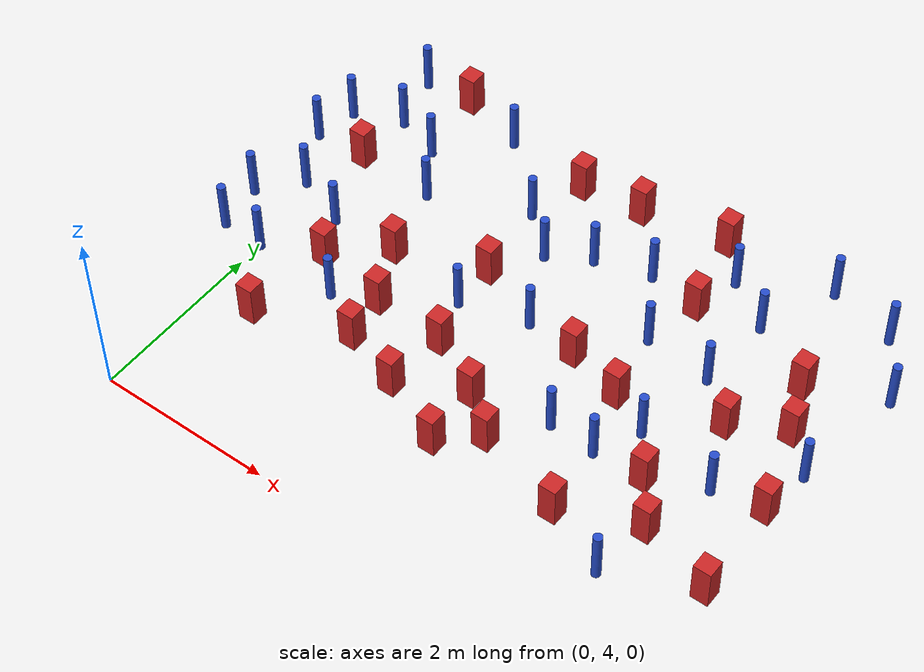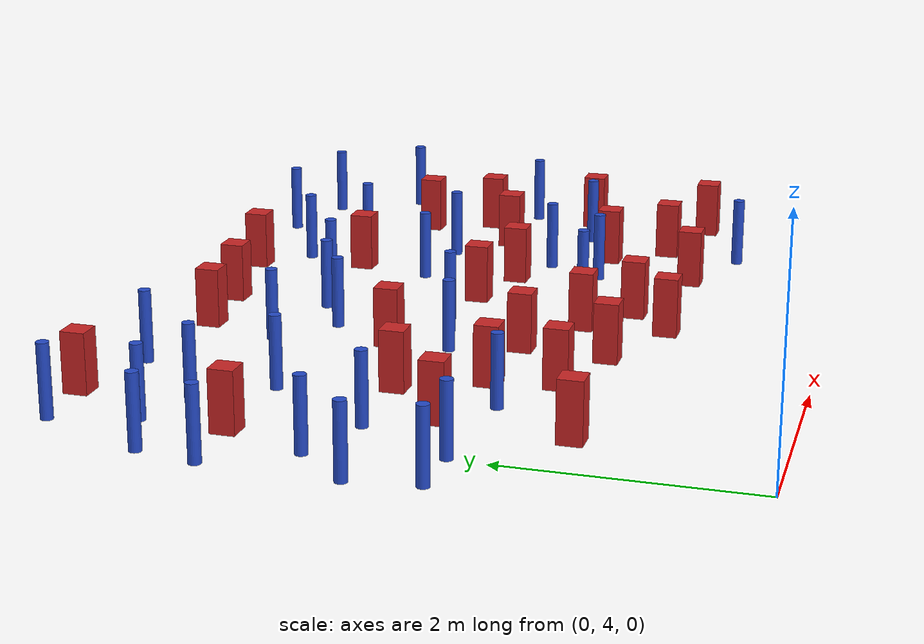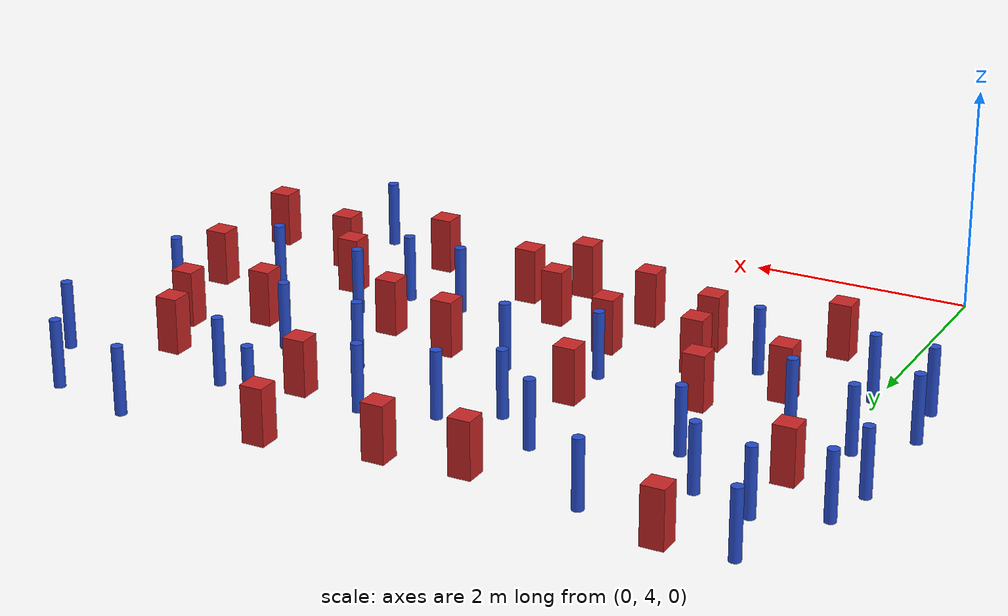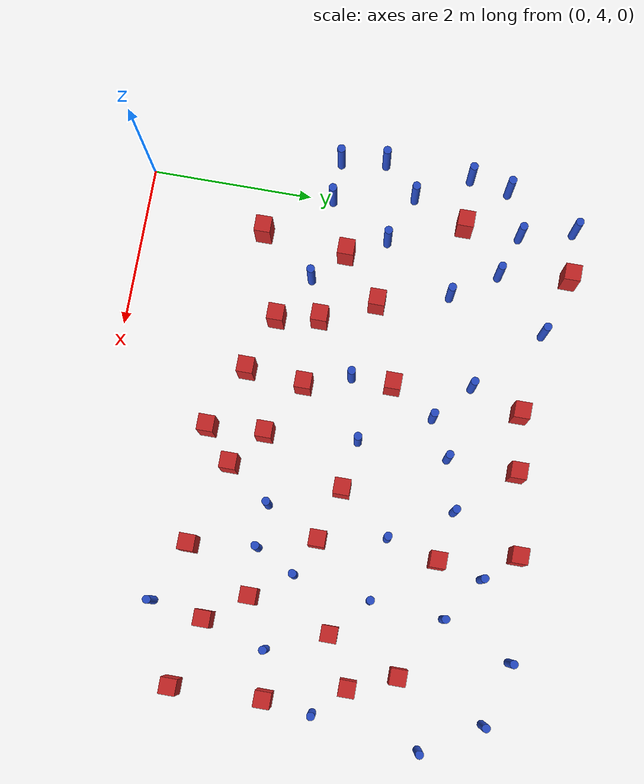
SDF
<sdf version="1.6">
 <model name="dense_7">
  <model name="pole_obstacle2">
   <static>true</static>
   <pose>1.06586460328 6.21019038955 7.38925637345e-09 -8.47170692799e-08 1.24976765033e-08 -1.74513093018e-07</pose>
   <link name="link">
    <pose>0 0 0.3 0 -0 0</pose>
    <inertial>
     <mass>1</mass>
     <inertia><ixx>0.145833</ixx><ixy>0</ixy><ixz>0</ixz><iyy>0.145833</iyy><iyz>0</iyz><izz>0.125</izz></inertia>
    </inertial>
    <collision name="collision">
     <geometry><cylinder><radius>0.05</radius><length>.6</length></cylinder></geometry>
    </collision>
    <visual name="visual">
     <geometry><cylinder><radius>0.05</radius><length>.6</length></cylinder></geometry>
     <material>
      <script><name>Gazebo/Blue</name><uri>file://media/materials/scripts/gazebo.material</uri></script>
     </material>
    </visual>
   </link>
  </model>
  <model name="pole_obstacle4">
   <static>true</static>
   <pose>4.92123123528 8.50646992746 7.38925637345e-09 -8.471706928e-08 1.24976765081e-08 -1.74513093015e-07</pose>
   <link name="link">
    <pose>0 0 0.3 0 -0 0</pose>
    <inertial>
     <mass>1</mass>
     <inertia><ixx>0.145833</ixx><ixy>0</ixy><ixz>0</ixz><iyy>0.145833</iyy><iyz>0</iyz><izz>0.125</izz></inertia>
    </inertial>
    <collision name="collision">
     <geometry><cylinder><radius>0.05</radius><length>.6</length></cylinder></geometry>
    </collision>
    <visual name="visual">
     <geometry><cylinder><radius>0.05</radius><length>.6</length></cylinder></geometry>
     <material>
      <script><name>Gazebo/Blue</name><uri>file://media/materials/scripts/gazebo.material</uri></script>
     </material>
    </visual>
   </link>
  </model>
  <model name="pole_obstacle9">
   <static>true</static>
   <pose>2.97873358199 7.12761243668 7.38925637345e-09 -8.47170692798e-08 1.24976765033e-08 -1.74513093019e-07</pose>
   <link name="link">
    <pose>0 0 0.3 0 -0 0</pose>
    <inertial>
     <mass>1</mass>
     <inertia><ixx>0.145833</ixx><ixy>0</ixy><ixz>0</ixz><iyy>0.145833</iyy><iyz>0</iyz><izz>0.125</izz></inertia>
    </inertial>
    <collision name="collision">
     <geometry><cylinder><radius>0.05</radius><length>.6</length></cylinder></geometry>
    </collision>
    <visual name="visual">
     <geometry><cylinder><radius>0.05</radius><length>.6</length></cylinder></geometry>
     <material>
      <script><name>Gazebo/Blue</name><uri>file://media/materials/scripts/gazebo.material</uri></script>
     </material>
    </visual>
   </link>
  </model>
  <model name="pole_obstacle15">
   <static>true</static>
   <pose>5.2954482456 9.36882287065 7.38925637345e-09 -8.471706928e-08 1.24976765081e-08 -1.74513093015e-07</pose>
   <link name="link">
    <pose>0 0 0.3 0 -0 0</pose>
    <inertial>
     <mass>1</mass>
     <inertia><ixx>0.145833</ixx><ixy>0</ixy><ixz>0</ixz><iyy>0.145833</iyy><iyz>0</iyz><izz>0.125</izz></inertia>
    </inertial>
    <collision name="collision">
     <geometry><cylinder><radius>0.05</radius><length>.6</length></cylinder></geometry>
    </collision>
    <visual name="visual">
     <geometry><cylinder><radius>0.05</radius><length>.6</length></cylinder></geometry>
     <material>
      <script><name>Gazebo/Blue</name><uri>file://media/materials/scripts/gazebo.material</uri></script>
     </material>
    </visual>
   </link>
  </model>
  <model name="square_post_obstacle26">
   <static>true</static>
   <pose>3.03407934263 9.09152359974 1.91545236811e-07 -7.35059704564e-06 1.12565212e-07 2.39332434364e-05</pose>
   <link name="link">
    <pose>0 0 0.25 0 -0 0</pose>
    <inertial>
     <mass>100</mass>
     <inertia>
      <ixx>0.166667</ixx>
      <ixy>0</ixy>
      <ixz>0</ixz>
      <iyy>0.166667</iyy>
      <iyz>0</iyz>
      <izz>0.166667</izz>
     </inertia>
    </inertial>
    <collision name="collision"><geometry><box><size>.2 .2 .5</size></box></geometry></collision>
    <visual name="visual">
     <geometry><box><size>.2 .2 .5</size></box></geometry>
     <material>
      <script><name>Gazebo/Red</name><uri>file://media/materials/scripts/gazebo.material</uri></script>
     </material>
    </visual>
   </link>
  </model>
  <model name="square_post_obstacle27">
   <static>true</static>
   <pose>3.11925551717 5.30204292351 1.91545236811e-07 -7.35059704564e-06 1.12565212e-07 2.39332434364e-05</pose>
   <link name="link">
    <pose>0 0 0.25 0 -0 0</pose>
    <inertial>
     <mass>100</mass>
     <inertia>
      <ixx>0.166667</ixx>
      <ixy>0</ixy>
      <ixz>0</ixz>
      <iyy>0.166667</iyy>
      <iyz>0</iyz>
      <izz>0.166667</izz>
     </inertia>
    </inertial>
    <collision name="collision"><geometry><box><size>.2 .2 .5</size></box></geometry></collision>
    <visual name="visual">
     <geometry><box><size>.2 .2 .5</size></box></geometry>
     <material>
      <script><name>Gazebo/Red</name><uri>file://media/materials/scripts/gazebo.material</uri></script>
     </material>
    </visual>
   </link>
  </model>
  <model name="pole_obstacle18">
   <static>true</static>
   <pose>0.428044369106 7.05701752918 7.38925637345e-09 -8.471706928e-08 1.24976765079e-08 -1.74513093015e-07</pose>
   <link name="link">
    <pose>0 0 0.3 0 -0 0</pose>
    <inertial>
     <mass>1</mass>
     <inertia><ixx>0.145833</ixx><ixy>0</ixy><ixz>0</ixz><iyy>0.145833</iyy><iyz>0</iyz><izz>0.125</izz></inertia>
    </inertial>
    <collision name="collision">
     <geometry><cylinder><radius>0.05</radius><length>.6</length></cylinder></geometry>
    </collision>
    <visual name="visual">
     <geometry><cylinder><radius>0.05</radius><length>.6</length></cylinder></geometry>
     <material>
      <script><name>Gazebo/Blue</name><uri>file://media/materials/scripts/gazebo.material</uri></script>
     </material>
    </visual>
   </link>
  </model>
  <model name="pole_obstacle20">
   <static>true</static>
   <pose>-0.183347849124 7.29966373755 7.38925637345e-09 -8.47170692799e-08 1.24976765068e-08 -1.74513093018e-07</pose>
   <link name="link">
    <pose>0 0 0.3 0 -0 0</pose>
    <inertial>
     <mass>1</mass>
     <inertia><ixx>0.145833</ixx><ixy>0</ixy><ixz>0</ixz><iyy>0.145833</iyy><iyz>0</iyz><izz>0.125</izz></inertia>
    </inertial>
    <collision name="collision">
     <geometry><cylinder><radius>0.05</radius><length>.6</length></cylinder></geometry>
    </collision>
    <visual name="visual">
     <geometry><cylinder><radius>0.05</radius><length>.6</length></cylinder></geometry>
     <material>
      <script><name>Gazebo/Blue</name><uri>file://media/materials/scripts/gazebo.material</uri></script>
     </material>
    </visual>
   </link>
  </model>
  <model name="square_post_obstacle31">
   <static>true</static>
   <pose>5.40658277878 5.69323114022 1.91545236811e-07 -7.35059704564e-06 1.12565212e-07 2.39332434364e-05</pose>
   <link name="link">
    <pose>0 0 0.25 0 -0 0</pose>
    <inertial>
     <mass>100</mass>
     <inertia>
      <ixx>0.166667</ixx>
      <ixy>0</ixy>
      <ixz>0</ixz>
      <iyy>0.166667</iyy>
      <iyz>0</iyz>
      <izz>0.166667</izz>
     </inertia>
    </inertial>
    <collision name="collision"><geometry><box><size>.2 .2 .5</size></box></geometry></collision>
    <visual name="visual">
     <geometry><box><size>.2 .2 .5</size></box></geometry>
     <material>
      <script><name>Gazebo/Red</name><uri>file://media/materials/scripts/gazebo.material</uri></script>
     </material>
    </visual>
   </link>
  </model>
  <model name="square_post_obstacle34">
   <static>true</static>
   <pose>1.2423792632 7.06311561988 1.91545236811e-07 -7.35059704564e-06 1.12565212e-07 2.39332434364e-05</pose>
   <link name="link">
    <pose>0 0 0.25 0 -0 0</pose>
    <inertial>
     <mass>100</mass>
     <inertia>
      <ixx>0.166667</ixx>
      <ixy>0</ixy>
      <ixz>0</ixz>
      <iyy>0.166667</iyy>
      <iyz>0</iyz>
      <izz>0.166667</izz>
     </inertia>
    </inertial>
    <collision name="collision"><geometry><box><size>.2 .2 .5</size></box></geometry></collision>
    <visual name="visual">
     <geometry><box><size>.2 .2 .5</size></box></geometry>
     <material>
      <script><name>Gazebo/Red</name><uri>file://media/materials/scripts/gazebo.material</uri></script>
     </material>
    </visual>
   </link>
  </model>
  <model name="pole_obstacle37">
   <static>true</static>
   <pose>4.85726156089 7.60585844058 7.38925637345e-09 -8.47170692796e-08 1.24976764786e-08 -1.74513093032e-07</pose>
   <link name="link">
    <pose>0 0 0.3 0 -0 0</pose>
    <inertial>
     <mass>1</mass>
     <inertia><ixx>0.145833</ixx><ixy>0</ixy><ixz>0</ixz><iyy>0.145833</iyy><iyz>0</iyz><izz>0.125</izz></inertia>
    </inertial>
    <collision name="collision">
     <geometry><cylinder><radius>0.05</radius><length>.6</length></cylinder></geometry>
    </collision>
    <visual name="visual">
     <geometry><cylinder><radius>0.05</radius><length>.6</length></cylinder></geometry>
     <material>
      <script><name>Gazebo/Blue</name><uri>file://media/materials/scripts/gazebo.material</uri></script>
     </material>
    </visual>
   </link>
  </model>
  <model name="pole_obstacle39">
   <static>true</static>
   <pose>0.626349549061 8.48914314361 7.38925637345e-09 -8.47170692797e-08 1.249767648e-08 -1.74513093032e-07</pose>
   <link name="link">
    <pose>0 0 0.3 0 -0 0</pose>
    <inertial>
     <mass>1</mass>
     <inertia><ixx>0.145833</ixx><ixy>0</ixy><ixz>0</ixz><iyy>0.145833</iyy><iyz>0</iyz><izz>0.125</izz></inertia>
    </inertial>
    <collision name="collision">
     <geometry><cylinder><radius>0.05</radius><length>.6</length></cylinder></geometry>
    </collision>
    <visual name="visual">
     <geometry><cylinder><radius>0.05</radius><length>.6</length></cylinder></geometry>
     <material>
      <script><name>Gazebo/Blue</name><uri>file://media/materials/scripts/gazebo.material</uri></script>
     </material>
    </visual>
   </link>
  </model>
  <model name="pole_obstacle42">
   <static>true</static>
   <pose>3.00503990446 8.23887131687 7.38925637345e-09 -8.47170692793e-08 1.24976764408e-08 -1.74513093041e-07</pose>
   <link name="link">
    <pose>0 0 0.3 0 -0 0</pose>
    <inertial>
     <mass>1</mass>
     <inertia><ixx>0.145833</ixx><ixy>0</ixy><ixz>0</ixz><iyy>0.145833</iyy><iyz>0</iyz><izz>0.125</izz></inertia>
    </inertial>
    <collision name="collision">
     <geometry><cylinder><radius>0.05</radius><length>.6</length></cylinder></geometry>
    </collision>
    <visual name="visual">
     <geometry><cylinder><radius>0.05</radius><length>.6</length></cylinder></geometry>
     <material>
      <script><name>Gazebo/Blue</name><uri>file://media/materials/scripts/gazebo.material</uri></script>
     </material>
    </visual>
   </link>
  </model>
  <model name="pole_obstacle45">
   <static>true</static>
   <pose>4.08362667837 7.68163873708 7.38925637345e-09 -8.47170692796e-08 1.24976764786e-08 -1.74513093032e-07</pose>
   <link name="link">
    <pose>0 0 0.3 0 -0 0</pose>
    <inertial>
     <mass>1</mass>
     <inertia><ixx>0.145833</ixx><ixy>0</ixy><ixz>0</ixz><iyy>0.145833</iyy><iyz>0</iyz><izz>0.125</izz></inertia>
    </inertial>
    <collision name="collision">
     <geometry><cylinder><radius>0.05</radius><length>.6</length></cylinder></geometry>
    </collision>
    <visual name="visual">
     <geometry><cylinder><radius>0.05</radius><length>.6</length></cylinder></geometry>
     <material>
      <script><name>Gazebo/Blue</name><uri>file://media/materials/scripts/gazebo.material</uri></script>
     </material>
    </visual>
   </link>
  </model>
  <model name="pole_obstacle46">
   <static>true</static>
   <pose>0.991937153047 7.93670062329 7.38925637345e-09 -8.471706928e-08 1.24976765144e-08 -1.74513093012e-07</pose>
   <link name="link">
    <pose>0 0 0.3 0 -0 0</pose>
    <inertial>
     <mass>1</mass>
     <inertia><ixx>0.145833</ixx><ixy>0</ixy><ixz>0</ixz><iyy>0.145833</iyy><iyz>0</iyz><izz>0.125</izz></inertia>
    </inertial>
    <collision name="collision">
     <geometry><cylinder><radius>0.05</radius><length>.6</length></cylinder></geometry>
    </collision>
    <visual name="visual">
     <geometry><cylinder><radius>0.05</radius><length>.6</length></cylinder></geometry>
     <material>
      <script><name>Gazebo/Blue</name><uri>file://media/materials/scripts/gazebo.material</uri></script>
     </material>
    </visual>
   </link>
  </model>
  <model name="square_post_obstacle49">
   <static>true</static>
   <pose>2.4050298605 6.35766472136 1.91545236811e-07 -7.35059704564e-06 1.12565212e-07 2.39332434364e-05</pose>
   <link name="link">
    <pose>0 0 0.25 0 -0 0</pose>
    <inertial>
     <mass>100</mass>
     <inertia>
      <ixx>0.166667</ixx>
      <ixy>0</ixy>
      <ixz>0</ixz>
      <iyy>0.166667</iyy>
      <iyz>0</iyz>
      <izz>0.166667</izz>
     </inertia>
    </inertial>
    <collision name="collision"><geometry><box><size>.2 .2 .5</size></box></geometry></collision>
    <visual name="visual">
     <geometry><box><size>.2 .2 .5</size></box></geometry>
     <material>
      <script><name>Gazebo/Red</name><uri>file://media/materials/scripts/gazebo.material</uri></script>
     </material>
    </visual>
   </link>
  </model>
  <model name="pole_obstacle52">
   <static>true</static>
   <pose>2.08269005218 8.38852144401 7.38925637345e-09 -8.47170692793e-08 1.24976764408e-08 -1.74513093041e-07</pose>
   <link name="link">
    <pose>0 0 0.3 0 -0 0</pose>
    <inertial>
     <mass>1</mass>
     <inertia><ixx>0.145833</ixx><ixy>0</ixy><ixz>0</ixz><iyy>0.145833</iyy><iyz>0</iyz><izz>0.125</izz></inertia>
    </inertial>
    <collision name="collision">
     <geometry><cylinder><radius>0.05</radius><length>.6</length></cylinder></geometry>
    </collision>
    <visual name="visual">
     <geometry><cylinder><radius>0.05</radius><length>.6</length></cylinder></geometry>
     <material>
      <script><name>Gazebo/Blue</name><uri>file://media/materials/scripts/gazebo.material</uri></script>
     </material>
    </visual>
   </link>
  </model>
  <model name="pole_obstacle53">
   <static>true</static>
   <pose>6.285139771 7.15417417461 7.38925637345e-09 -8.47170692796e-08 1.24976764786e-08 -1.74513093032e-07</pose>
   <link name="link">
    <pose>0 0 0.3 0 -0 0</pose>
    <inertial>
     <mass>1</mass>
     <inertia><ixx>0.145833</ixx><ixy>0</ixy><ixz>0</ixz><iyy>0.145833</iyy><iyz>0</iyz><izz>0.125</izz></inertia>
    </inertial>
    <collision name="collision">
     <geometry><cylinder><radius>0.05</radius><length>.6</length></cylinder></geometry>
    </collision>
    <visual name="visual">
     <geometry><cylinder><radius>0.05</radius><length>.6</length></cylinder></geometry>
     <material>
      <script><name>Gazebo/Blue</name><uri>file://media/materials/scripts/gazebo.material</uri></script>
     </material>
    </visual>
   </link>
  </model>
  <model name="pole_obstacle54">
   <static>true</static>
   <pose>3.63076233303 8.42207366704 7.38925637345e-09 -8.47170692793e-08 1.24976764408e-08 -1.74513093041e-07</pose>
   <link name="link">
    <pose>0 0 0.3 0 -0 0</pose>
    <inertial>
     <mass>1</mass>
     <inertia><ixx>0.145833</ixx><ixy>0</ixy><ixz>0</ixz><iyy>0.145833</iyy><iyz>0</iyz><izz>0.125</izz></inertia>
    </inertial>
    <collision name="collision">
     <geometry><cylinder><radius>0.05</radius><length>.6</length></cylinder></geometry>
    </collision>
    <visual name="visual">
     <geometry><cylinder><radius>0.05</radius><length>.6</length></cylinder></geometry>
     <material>
      <script><name>Gazebo/Blue</name><uri>file://media/materials/scripts/gazebo.material</uri></script>
     </material>
    </visual>
   </link>
  </model>
  <model name="square_post_obstacle75">
   <static>true</static>
   <pose>5.67974589272 8.07805572029 1.91545236811e-07 -7.35059704564e-06 1.12565212e-07 2.39332434364e-05</pose>
   <link name="link">
    <pose>0 0 0.25 0 -0 0</pose>
    <inertial>
     <mass>100</mass>
     <inertia>
      <ixx>0.166667</ixx>
      <ixy>0</ixy>
      <ixz>0</ixz>
      <iyy>0.166667</iyy>
      <iyz>0</iyz>
      <izz>0.166667</izz>
     </inertia>
    </inertial>
    <collision name="collision"><geometry><box><size>.2 .2 .5</size></box></geometry></collision>
    <visual name="visual">
     <geometry><box><size>.2 .2 .5</size></box></geometry>
     <material>
      <script><name>Gazebo/Red</name><uri>file://media/materials/scripts/gazebo.material</uri></script>
     </material>
    </visual>
   </link>
  </model>
  <model name="pole_obstacle70">
   <static>true</static>
   <pose>6.0670929877 9.16637028866 7.38925637345e-09 -8.471706928e-08 1.24976765081e-08 -1.74513093015e-07</pose>
   <link name="link">
    <pose>0 0 0.3 0 -0 0</pose>
    <inertial>
     <mass>1</mass>
     <inertia><ixx>0.145833</ixx><ixy>0</ixy><ixz>0</ixz><iyy>0.145833</iyy><iyz>0</iyz><izz>0.125</izz></inertia>
    </inertial>
    <collision name="collision">
     <geometry><cylinder><radius>0.05</radius><length>.6</length></cylinder></geometry>
    </collision>
    <visual name="visual">
     <geometry><cylinder><radius>0.05</radius><length>.6</length></cylinder></geometry>
     <material>
      <script><name>Gazebo/Blue</name><uri>file://media/materials/scripts/gazebo.material</uri></script>
     </material>
    </visual>
   </link>
  </model>
  <model name="pole_obstacle71">
   <static>true</static>
   <pose>-0.488612107493 6.31344434281 7.38925637345e-09 -8.471706928e-08 1.24976765062e-08 -1.74513093016e-07</pose>
   <link name="link">
    <pose>0 0 0.3 0 -0 0</pose>
    <inertial>
     <mass>1</mass>
     <inertia><ixx>0.145833</ixx><ixy>0</ixy><ixz>0</ixz><iyy>0.145833</iyy><iyz>0</iyz><izz>0.125</izz></inertia>
    </inertial>
    <collision name="collision">
     <geometry><cylinder><radius>0.05</radius><length>.6</length></cylinder></geometry>
    </collision>
    <visual name="visual">
     <geometry><cylinder><radius>0.05</radius><length>.6</length></cylinder></geometry>
     <material>
      <script><name>Gazebo/Blue</name><uri>file://media/materials/scripts/gazebo.material</uri></script>
     </material>
    </visual>
   </link>
  </model>
  <model name="square_post_obstacle80">
   <static>true</static>
   <pose>0.0815733638794 7.97062195004 1.91545236811e-07 -7.35059704564e-06 1.12565212e-07 2.39332434364e-05</pose>
   <link name="link">
    <pose>0 0 0.25 0 -0 0</pose>
    <inertial>
     <mass>100</mass>
     <inertia>
      <ixx>0.166667</ixx>
      <ixy>0</ixy>
      <ixz>0</ixz>
      <iyy>0.166667</iyy>
      <iyz>0</iyz>
      <izz>0.166667</izz>
     </inertia>
    </inertial>
    <collision name="collision"><geometry><box><size>.2 .2 .5</size></box></geometry></collision>
    <visual name="visual">
     <geometry><box><size>.2 .2 .5</size></box></geometry>
     <material>
      <script><name>Gazebo/Red</name><uri>file://media/materials/scripts/gazebo.material</uri></script>
     </material>
    </visual>
   </link>
  </model>
  <model name="pole_obstacle93">
   <static>true</static>
   <pose>0.0936364248604 8.6671400511 7.38925637345e-09 -8.47170692797e-08 1.24976764742e-08 -1.74513093035e-07</pose>
   <link name="link">
    <pose>0 0 0.3 0 -0 0</pose>
    <inertial>
     <mass>1</mass>
     <inertia><ixx>0.145833</ixx><ixy>0</ixy><ixz>0</ixz><iyy>0.145833</iyy><iyz>0</iyz><izz>0.125</izz></inertia>
    </inertial>
    <collision name="collision">
     <geometry><cylinder><radius>0.05</radius><length>.6</length></cylinder></geometry>
    </collision>
    <visual name="visual">
     <geometry><cylinder><radius>0.05</radius><length>.6</length></cylinder></geometry>
     <material>
      <script><name>Gazebo/Blue</name><uri>file://media/materials/scripts/gazebo.material</uri></script>
     </material>
    </visual>
   </link>
  </model>
  <model name="square_post_obstacle85">
   <static>true</static>
   <pose>0.525322281253 9.35652579422 1.91545236811e-07 -7.35059704564e-06 1.12565212e-07 2.39332434364e-05</pose>
   <link name="link">
    <pose>0 0 0.25 0 -0 0</pose>
    <inertial>
     <mass>100</mass>
     <inertia>
      <ixx>0.166667</ixx>
      <ixy>0</ixy>
      <ixz>0</ixz>
      <iyy>0.166667</iyy>
      <iyz>0</iyz>
      <izz>0.166667</izz>
     </inertia>
    </inertial>
    <collision name="collision"><geometry><box><size>.2 .2 .5</size></box></geometry></collision>
    <visual name="visual">
     <geometry><box><size>.2 .2 .5</size></box></geometry>
     <material>
      <script><name>Gazebo/Red</name><uri>file://media/materials/scripts/gazebo.material</uri></script>
     </material>
    </visual>
   </link>
  </model>
  <model name="pole_obstacle100">
   <static>true</static>
   <pose>5.29961428321 5.03121042842 7.38925637345e-09 -8.47170692796e-08 1.24976764786e-08 -1.74513093032e-07</pose>
   <link name="link">
    <pose>0 0 0.3 0 -0 0</pose>
    <inertial>
     <mass>1</mass>
     <inertia><ixx>0.145833</ixx><ixy>0</ixy><ixz>0</ixz><iyy>0.145833</iyy><iyz>0</iyz><izz>0.125</izz></inertia>
    </inertial>
    <collision name="collision">
     <geometry><cylinder><radius>0.05</radius><length>.6</length></cylinder></geometry>
    </collision>
    <visual name="visual">
     <geometry><cylinder><radius>0.05</radius><length>.6</length></cylinder></geometry>
     <material>
      <script><name>Gazebo/Blue</name><uri>file://media/materials/scripts/gazebo.material</uri></script>
     </material>
    </visual>
   </link>
  </model>
  <model name="square_post_obstacle93">
   <static>true</static>
   <pose>0.685206457645 6.5806761915 1.91545236811e-07 -7.35059704564e-06 1.12565212e-07 2.39332434364e-05</pose>
   <link name="link">
    <pose>0 0 0.25 0 -0 0</pose>
    <inertial>
     <mass>100</mass>
     <inertia>
      <ixx>0.166667</ixx>
      <ixy>0</ixy>
      <ixz>0</ixz>
      <iyy>0.166667</iyy>
      <iyz>0</iyz>
      <izz>0.166667</izz>
     </inertia>
    </inertial>
    <collision name="collision"><geometry><box><size>.2 .2 .5</size></box></geometry></collision>
    <visual name="visual">
     <geometry><box><size>.2 .2 .5</size></box></geometry>
     <material>
      <script><name>Gazebo/Red</name><uri>file://media/materials/scripts/gazebo.material</uri></script>
     </material>
    </visual>
   </link>
  </model>
  <model name="square_post_obstacle97">
   <static>true</static>
   <pose>5.91391910989 7.5128489551 1.91545236811e-07 -7.35059704564e-06 1.12565212e-07 2.39332434364e-05</pose>
   <link name="link">
    <pose>0 0 0.25 0 -0 0</pose>
    <inertial>
     <mass>100</mass>
     <inertia>
      <ixx>0.166667</ixx>
      <ixy>0</ixy>
      <ixz>0</ixz>
      <iyy>0.166667</iyy>
      <iyz>0</iyz>
      <izz>0.166667</izz>
     </inertia>
    </inertial>
    <collision name="collision"><geometry><box><size>.2 .2 .5</size></box></geometry></collision>
    <visual name="visual">
     <geometry><box><size>.2 .2 .5</size></box></geometry>
     <material>
      <script><name>Gazebo/Red</name><uri>file://media/materials/scripts/gazebo.material</uri></script>
     </material>
    </visual>
   </link>
  </model>
  <model name="square_post_obstacle110">
   <static>true</static>
   <pose>6.2070752471 6.56133386793 1.91545236811e-07 -7.35059704564e-06 1.12565212e-07 2.39332434364e-05</pose>
   <link name="link">
    <pose>0 0 0.25 0 -0 0</pose>
    <inertial>
     <mass>100</mass>
     <inertia>
      <ixx>0.166667</ixx>
      <ixy>0</ixy>
      <ixz>0</ixz>
      <iyy>0.166667</iyy>
      <iyz>0</iyz>
      <izz>0.166667</izz>
     </inertia>
    </inertial>
    <collision name="collision"><geometry><box><size>.2 .2 .5</size></box></geometry></collision>
    <visual name="visual">
     <geometry><box><size>.2 .2 .5</size></box></geometry>
     <material>
      <script><name>Gazebo/Red</name><uri>file://media/materials/scripts/gazebo.material</uri></script>
     </material>
    </visual>
   </link>
  </model>
  <model name="square_post_obstacle114">
   <static>true</static>
   <pose>5.04928227468 6.1761450967 1.91545236811e-07 -7.35059704564e-06 1.12565212e-07 2.39332434364e-05</pose>
   <link name="link">
    <pose>0 0 0.25 0 -0 0</pose>
    <inertial>
     <mass>100</mass>
     <inertia>
      <ixx>0.166667</ixx>
      <ixy>0</ixy>
      <ixz>0</ixz>
      <iyy>0.166667</iyy>
      <iyz>0</iyz>
      <izz>0.166667</izz>
     </inertia>
    </inertial>
    <collision name="collision"><geometry><box><size>.2 .2 .5</size></box></geometry></collision>
    <visual name="visual">
     <geometry><box><size>.2 .2 .5</size></box></geometry>
     <material>
      <script><name>Gazebo/Red</name><uri>file://media/materials/scripts/gazebo.material</uri></script>
     </material>
    </visual>
   </link>
  </model>
  <model name="pole_obstacle132">
   <static>true</static>
   <pose>2.5421407417 7.97824844652 7.38925637345e-09 -8.47170692799e-08 1.24976765031e-08 -1.7451309302e-07</pose>
   <link name="link">
    <pose>0 0 0.3 0 -0 0</pose>
    <inertial>
     <mass>1</mass>
     <inertia><ixx>0.145833</ixx><ixy>0</ixy><ixz>0</ixz><iyy>0.145833</iyy><iyz>0</iyz><izz>0.125</izz></inertia>
    </inertial>
    <collision name="collision">
     <geometry><cylinder><radius>0.05</radius><length>.6</length></cylinder></geometry>
    </collision>
    <visual name="visual">
     <geometry><cylinder><radius>0.05</radius><length>.6</length></cylinder></geometry>
     <material>
      <script><name>Gazebo/Blue</name><uri>file://media/materials/scripts/gazebo.material</uri></script>
     </material>
    </visual>
   </link>
  </model>
  <model name="square_post_obstacle117">
   <static>true</static>
   <pose>2.33819778625 5.6386660418 1.91545236811e-07 -7.35059704564e-06 1.12565212e-07 2.39332434364e-05</pose>
   <link name="link">
    <pose>0 0 0.25 0 -0 0</pose>
    <inertial>
     <mass>100</mass>
     <inertia>
      <ixx>0.166667</ixx>
      <ixy>0</ixy>
      <ixz>0</ixz>
      <iyy>0.166667</iyy>
      <iyz>0</iyz>
      <izz>0.166667</izz>
     </inertia>
    </inertial>
    <collision name="collision"><geometry><box><size>.2 .2 .5</size></box></geometry></collision>
    <visual name="visual">
     <geometry><box><size>.2 .2 .5</size></box></geometry>
     <material>
      <script><name>Gazebo/Red</name><uri>file://media/materials/scripts/gazebo.material</uri></script>
     </material>
    </visual>
   </link>
  </model>
  <model name="square_post_obstacle120">
   <static>true</static>
   <pose>6.24600844041 5.45172950169 1.91545236811e-07 -7.35059704564e-06 1.12565212e-07 2.39332434364e-05</pose>
   <link name="link">
    <pose>0 0 0.25 0 -0 0</pose>
    <inertial>
     <mass>100</mass>
     <inertia>
      <ixx>0.166667</ixx>
      <ixy>0</ixy>
      <ixz>0</ixz>
      <iyy>0.166667</iyy>
      <iyz>0</iyz>
      <izz>0.166667</izz>
     </inertia>
    </inertial>
    <collision name="collision"><geometry><box><size>.2 .2 .5</size></box></geometry></collision>
    <visual name="visual">
     <geometry><box><size>.2 .2 .5</size></box></geometry>
     <material>
      <script><name>Gazebo/Red</name><uri>file://media/materials/scripts/gazebo.material</uri></script>
     </material>
    </visual>
   </link>
  </model>
  <model name="square_post_obstacle123">
   <static>true</static>
   <pose>0.581401344451 5.52908161055 1.91545236811e-07 -7.35059704564e-06 1.12565212e-07 2.39332434364e-05</pose>
   <link name="link">
    <pose>0 0 0.25 0 -0 0</pose>
    <inertial>
     <mass>100</mass>
     <inertia>
      <ixx>0.166667</ixx>
      <ixy>0</ixy>
      <ixz>0</ixz>
      <iyy>0.166667</iyy>
      <iyz>0</iyz>
      <izz>0.166667</izz>
     </inertia>
    </inertial>
    <collision name="collision"><geometry><box><size>.2 .2 .5</size></box></geometry></collision>
    <visual name="visual">
     <geometry><box><size>.2 .2 .5</size></box></geometry>
     <material>
      <script><name>Gazebo/Red</name><uri>file://media/materials/scripts/gazebo.material</uri></script>
     </material>
    </visual>
   </link>
  </model>
  <model name="square_post_obstacle126">
   <static>true</static>
   <pose>2.30696308264 9.01777164207 1.91545236811e-07 -7.35059704564e-06 1.12565212e-07 2.39332434364e-05</pose>
   <link name="link">
    <pose>0 0 0.25 0 -0 0</pose>
    <inertial>
     <mass>100</mass>
     <inertia>
      <ixx>0.166667</ixx>
      <ixy>0</ixy>
      <ixz>0</ixz>
      <iyy>0.166667</iyy>
      <iyz>0</iyz>
      <izz>0.166667</izz>
     </inertia>
    </inertial>
    <collision name="collision"><geometry><box><size>.2 .2 .5</size></box></geometry></collision>
    <visual name="visual">
     <geometry><box><size>.2 .2 .5</size></box></geometry>
     <material>
      <script><name>Gazebo/Red</name><uri>file://media/materials/scripts/gazebo.material</uri></script>
     </material>
    </visual>
   </link>
  </model>
  <model name="square_post_obstacle129">
   <static>true</static>
   <pose>4.55897571774 5.34434781311 1.91545236811e-07 -7.35059704564e-06 1.12565212e-07 2.39332434364e-05</pose>
   <link name="link">
    <pose>0 0 0.25 0 -0 0</pose>
    <inertial>
     <mass>100</mass>
     <inertia>
      <ixx>0.166667</ixx>
      <ixy>0</ixy>
      <ixz>0</ixz>
      <iyy>0.166667</iyy>
      <iyz>0</iyz>
      <izz>0.166667</izz>
     </inertia>
    </inertial>
    <collision name="collision"><geometry><box><size>.2 .2 .5</size></box></geometry></collision>
    <visual name="visual">
     <geometry><box><size>.2 .2 .5</size></box></geometry>
     <material>
      <script><name>Gazebo/Red</name><uri>file://media/materials/scripts/gazebo.material</uri></script>
     </material>
    </visual>
   </link>
  </model>
  <model name="square_post_obstacle134">
   <static>true</static>
   <pose>4.24744561423 8.31666862912 1.91545236811e-07 -7.35059704564e-06 1.12565212e-07 2.39332434364e-05</pose>
   <link name="link">
    <pose>0 0 0.25 0 -0 0</pose>
    <inertial>
     <mass>100</mass>
     <inertia>
      <ixx>0.166667</ixx>
      <ixy>0</ixy>
      <ixz>0</ixz>
      <iyy>0.166667</iyy>
      <iyz>0</iyz>
      <izz>0.166667</izz>
     </inertia>
    </inertial>
    <collision name="collision"><geometry><box><size>.2 .2 .5</size></box></geometry></collision>
    <visual name="visual">
     <geometry><box><size>.2 .2 .5</size></box></geometry>
     <material>
      <script><name>Gazebo/Red</name><uri>file://media/materials/scripts/gazebo.material</uri></script>
     </material>
    </visual>
   </link>
  </model>
  <model name="square_post_obstacle140">
   <static>true</static>
   <pose>3.51981278126 5.65038298557 1.91545236811e-07 -7.35059704564e-06 1.12565212e-07 2.39332434364e-05</pose>
   <link name="link">
    <pose>0 0 0.25 0 -0 0</pose>
    <inertial>
     <mass>100</mass>
     <inertia>
      <ixx>0.166667</ixx>
      <ixy>0</ixy>
      <ixz>0</ixz>
      <iyy>0.166667</iyy>
      <iyz>0</iyz>
      <izz>0.166667</izz>
     </inertia>
    </inertial>
    <collision name="collision"><geometry><box><size>.2 .2 .5</size></box></geometry></collision>
    <visual name="visual">
     <geometry><box><size>.2 .2 .5</size></box></geometry>
     <material>
      <script><name>Gazebo/Red</name><uri>file://media/materials/scripts/gazebo.material</uri></script>
     </material>
    </visual>
   </link>
  </model>
  <model name="square_post_obstacle144">
   <static>true</static>
   <pose>3.59022465571 7.04267144804 1.91545236811e-07 -7.35059704564e-06 1.12565212e-07 2.39332434364e-05</pose>
   <link name="link">
    <pose>0 0 0.25 0 -0 0</pose>
    <inertial>
     <mass>100</mass>
     <inertia>
      <ixx>0.166667</ixx>
      <ixy>0</ixy>
      <ixz>0</ixz>
      <iyy>0.166667</iyy>
      <iyz>0</iyz>
      <izz>0.166667</izz>
     </inertia>
    </inertial>
    <collision name="collision"><geometry><box><size>.2 .2 .5</size></box></geometry></collision>
    <visual name="visual">
     <geometry><box><size>.2 .2 .5</size></box></geometry>
     <material>
      <script><name>Gazebo/Red</name><uri>file://media/materials/scripts/gazebo.material</uri></script>
     </material>
    </visual>
   </link>
  </model>
  <model name="square_post_obstacle153">
   <static>true</static>
   <pose>4.24442954807 6.86071463461 1.91545236811e-07 -7.35059704564e-06 1.12565212e-07 2.39332434364e-05</pose>
   <link name="link">
    <pose>0 0 0.25 0 -0 0</pose>
    <inertial>
     <mass>100</mass>
     <inertia>
      <ixx>0.166667</ixx>
      <ixy>0</ixy>
      <ixz>0</ixz>
      <iyy>0.166667</iyy>
      <iyz>0</iyz>
      <izz>0.166667</izz>
     </inertia>
    </inertial>
    <collision name="collision"><geometry><box><size>.2 .2 .5</size></box></geometry></collision>
    <visual name="visual">
     <geometry><box><size>.2 .2 .5</size></box></geometry>
     <material>
      <script><name>Gazebo/Red</name><uri>file://media/materials/scripts/gazebo.material</uri></script>
     </material>
    </visual>
   </link>
  </model>
  <model name="pole_obstacle165">
   <static>true</static>
   <pose>5.64071032349 6.47075185656 7.38925637345e-09 -8.47170692796e-08 1.24976764786e-08 -1.74513093032e-07</pose>
   <link name="link">
    <pose>0 0 0.3 0 -0 0</pose>
    <inertial>
     <mass>1</mass>
     <inertia><ixx>0.145833</ixx><ixy>0</ixy><ixz>0</ixz><iyy>0.145833</iyy><iyz>0</iyz><izz>0.125</izz></inertia>
    </inertial>
    <collision name="collision">
     <geometry><cylinder><radius>0.05</radius><length>.6</length></cylinder></geometry>
    </collision>
    <visual name="visual">
     <geometry><cylinder><radius>0.05</radius><length>.6</length></cylinder></geometry>
     <material>
      <script><name>Gazebo/Blue</name><uri>file://media/materials/scripts/gazebo.material</uri></script>
     </material>
    </visual>
   </link>
  </model>
  <model name="square_post_obstacle158">
   <static>true</static>
   <pose>3.07263737514 6.00183538461 1.91545236811e-07 -7.35059704564e-06 1.12565212e-07 2.39332434364e-05</pose>
   <link name="link">
    <pose>0 0 0.25 0 -0 0</pose>
    <inertial>
     <mass>100</mass>
     <inertia>
      <ixx>0.166667</ixx>
      <ixy>0</ixy>
      <ixz>0</ixz>
      <iyy>0.166667</iyy>
      <iyz>0</iyz>
      <izz>0.166667</izz>
     </inertia>
    </inertial>
    <collision name="collision"><geometry><box><size>.2 .2 .5</size></box></geometry></collision>
    <visual name="visual">
     <geometry><box><size>.2 .2 .5</size></box></geometry>
     <material>
      <script><name>Gazebo/Red</name><uri>file://media/materials/scripts/gazebo.material</uri></script>
     </material>
    </visual>
   </link>
  </model>
  <model name="pole_obstacle167">
   <static>true</static>
   <pose>-0.566475502551 6.87211024993 7.38925637345e-09 -8.471706928e-08 1.24976765086e-08 -1.74513093015e-07</pose>
   <link name="link">
    <pose>0 0 0.3 0 -0 0</pose>
    <inertial>
     <mass>1</mass>
     <inertia><ixx>0.145833</ixx><ixy>0</ixy><ixz>0</ixz><iyy>0.145833</iyy><iyz>0</iyz><izz>0.125</izz></inertia>
    </inertial>
    <collision name="collision">
     <geometry><cylinder><radius>0.05</radius><length>.6</length></cylinder></geometry>
    </collision>
    <visual name="visual">
     <geometry><cylinder><radius>0.05</radius><length>.6</length></cylinder></geometry>
     <material>
      <script><name>Gazebo/Blue</name><uri>file://media/materials/scripts/gazebo.material</uri></script>
     </material>
    </visual>
   </link>
  </model>
  <model name="pole_obstacle178">
   <static>true</static>
   <pose>-0.0786809139384 9.32939792244 7.38925637345e-09 -8.47170692796e-08 1.24976764728e-08 -1.74513093036e-07</pose>
   <link name="link">
    <pose>0 0 0.3 0 -0 0</pose>
    <inertial>
     <mass>1</mass>
     <inertia><ixx>0.145833</ixx><ixy>0</ixy><ixz>0</ixz><iyy>0.145833</iyy><iyz>0</iyz><izz>0.125</izz></inertia>
    </inertial>
    <collision name="collision">
     <geometry><cylinder><radius>0.05</radius><length>.6</length></cylinder></geometry>
    </collision>
    <visual name="visual">
     <geometry><cylinder><radius>0.05</radius><length>.6</length></cylinder></geometry>
     <material>
      <script><name>Gazebo/Blue</name><uri>file://media/materials/scripts/gazebo.material</uri></script>
     </material>
    </visual>
   </link>
  </model>
  <model name="pole_obstacle187">
   <static>true</static>
   <pose>1.27605580764 9.14319736148 7.38925637345e-09 -8.47170692798e-08 1.24976764881e-08 -1.74513093027e-07</pose>
   <link name="link">
    <pose>0 0 0.3 0 -0 0</pose>
    <inertial>
     <mass>1</mass>
     <inertia><ixx>0.145833</ixx><ixy>0</ixy><ixz>0</ixz><iyy>0.145833</iyy><iyz>0</iyz><izz>0.125</izz></inertia>
    </inertial>
    <collision name="collision">
     <geometry><cylinder><radius>0.05</radius><length>.6</length></cylinder></geometry>
    </collision>
    <visual name="visual">
     <geometry><cylinder><radius>0.05</radius><length>.6</length></cylinder></geometry>
     <material>
      <script><name>Gazebo/Blue</name><uri>file://media/materials/scripts/gazebo.material</uri></script>
     </material>
    </visual>
   </link>
  </model>
  <model name="square_post_obstacle180">
   <static>true</static>
   <pose>4.02912967646 9.26178256638 1.91545236811e-07 -7.35059704564e-06 1.12565212e-07 2.39332434364e-05</pose>
   <link name="link">
    <pose>0 0 0.25 0 -0 0</pose>
    <inertial>
     <mass>100</mass>
     <inertia>
      <ixx>0.166667</ixx>
      <ixy>0</ixy>
      <ixz>0</ixz>
      <iyy>0.166667</iyy>
      <iyz>0</iyz>
      <izz>0.166667</izz>
     </inertia>
    </inertial>
    <collision name="collision"><geometry><box><size>.2 .2 .5</size></box></geometry></collision>
    <visual name="visual">
     <geometry><box><size>.2 .2 .5</size></box></geometry>
     <material>
      <script><name>Gazebo/Red</name><uri>file://media/materials/scripts/gazebo.material</uri></script>
     </material>
    </visual>
   </link>
  </model>
  <model name="square_post_obstacle185">
   <static>true</static>
   <pose>2.22547672574 7.42842193801 1.91545236811e-07 -7.35059704564e-06 1.12565212e-07 2.39332434364e-05</pose>
   <link name="link">
    <pose>0 0 0.25 0 -0 0</pose>
    <inertial>
     <mass>100</mass>
     <inertia>
      <ixx>0.166667</ixx>
      <ixy>0</ixy>
      <ixz>0</ixz>
      <iyy>0.166667</iyy>
      <iyz>0</iyz>
      <izz>0.166667</izz>
     </inertia>
    </inertial>
    <collision name="collision"><geometry><box><size>.2 .2 .5</size></box></geometry></collision>
    <visual name="visual">
     <geometry><box><size>.2 .2 .5</size></box></geometry>
     <material>
      <script><name>Gazebo/Red</name><uri>file://media/materials/scripts/gazebo.material</uri></script>
     </material>
    </visual>
   </link>
  </model>
  <model name="pole_obstacle194">
   <static>true</static>
   <pose>4.70963600196 6.64985895192 7.38925637345e-09 -8.47170692796e-08 1.24976764786e-08 -1.74513093032e-07</pose>
   <link name="link">
    <pose>0 0 0.3 0 -0 0</pose>
    <inertial>
     <mass>1</mass>
     <inertia><ixx>0.145833</ixx><ixy>0</ixy><ixz>0</ixz><iyy>0.145833</iyy><iyz>0</iyz><izz>0.125</izz></inertia>
    </inertial>
    <collision name="collision">
     <geometry><cylinder><radius>0.05</radius><length>.6</length></cylinder></geometry>
    </collision>
    <visual name="visual">
     <geometry><cylinder><radius>0.05</radius><length>.6</length></cylinder></geometry>
     <material>
      <script><name>Gazebo/Blue</name><uri>file://media/materials/scripts/gazebo.material</uri></script>
     </material>
    </visual>
   </link>
  </model>
  <model name="square_post_obstacle200">
   <static>true</static>
   <pose>1.63684411359 5.87849885885 1.91545236811e-07 -7.35059704564e-06 1.12565212e-07 2.39332434364e-05</pose>
   <link name="link">
    <pose>0 0 0.25 0 -0 0</pose>
    <inertial>
     <mass>100</mass>
     <inertia>
      <ixx>0.166667</ixx>
      <ixy>0</ixy>
      <ixz>0</ixz>
      <iyy>0.166667</iyy>
      <iyz>0</iyz>
      <izz>0.166667</izz>
     </inertia>
    </inertial>
    <collision name="collision"><geometry><box><size>.2 .2 .5</size></box></geometry></collision>
    <visual name="visual">
     <geometry><box><size>.2 .2 .5</size></box></geometry>
     <material>
      <script><name>Gazebo/Red</name><uri>file://media/materials/scripts/gazebo.material</uri></script>
     </material>
    </visual>
   </link>
  </model>
  <model name="pole_obstacle211">
   <static>true</static>
   <pose>0.016244450239 6.29646315878 7.38925637345e-09 -8.471706928e-08 1.24976765087e-08 -1.74513093016e-07</pose>
   <link name="link">
    <pose>0 0 0.3 0 -0 0</pose>
    <inertial>
     <mass>1</mass>
     <inertia><ixx>0.145833</ixx><ixy>0</ixy><ixz>0</ixz><iyy>0.145833</iyy><iyz>0</iyz><izz>0.125</izz></inertia>
    </inertial>
    <collision name="collision">
     <geometry><cylinder><radius>0.05</radius><length>.6</length></cylinder></geometry>
    </collision>
    <visual name="visual">
     <geometry><cylinder><radius>0.05</radius><length>.6</length></cylinder></geometry>
     <material>
      <script><name>Gazebo/Blue</name><uri>file://media/materials/scripts/gazebo.material</uri></script>
     </material>
    </visual>
   </link>
  </model>
  <model name="pole_obstacle222">
   <static>true</static>
   <pose>-0.548744339599 7.95155657404 7.38925637345e-09 -8.47170692798e-08 1.24976764926e-08 -1.74513093024e-07</pose>
   <link name="link">
    <pose>0 0 0.3 0 -0 0</pose>
    <inertial>
     <mass>1</mass>
     <inertia><ixx>0.145833</ixx><ixy>0</ixy><ixz>0</ixz><iyy>0.145833</iyy><iyz>0</iyz><izz>0.125</izz></inertia>
    </inertial>
    <collision name="collision">
     <geometry><cylinder><radius>0.05</radius><length>.6</length></cylinder></geometry>
    </collision>
    <visual name="visual">
     <geometry><cylinder><radius>0.05</radius><length>.6</length></cylinder></geometry>
     <material>
      <script><name>Gazebo/Blue</name><uri>file://media/materials/scripts/gazebo.material</uri></script>
     </material>
    </visual>
   </link>
  </model>
  <model name="square_post_obstacle202">
   <static>true</static>
   <pose>1.55453273505 6.40504866956 1.91545236811e-07 -7.35059704564e-06 1.12565212e-07 2.39332434364e-05</pose>
   <link name="link">
    <pose>0 0 0.25 0 -0 0</pose>
    <inertial>
     <mass>100</mass>
     <inertia>
      <ixx>0.166667</ixx>
      <ixy>0</ixy>
      <ixz>0</ixz>
      <iyy>0.166667</iyy>
      <iyz>0</iyz>
      <izz>0.166667</izz>
     </inertia>
    </inertial>
    <collision name="collision"><geometry><box><size>.2 .2 .5</size></box></geometry></collision>
    <visual name="visual">
     <geometry><box><size>.2 .2 .5</size></box></geometry>
     <material>
      <script><name>Gazebo/Red</name><uri>file://media/materials/scripts/gazebo.material</uri></script>
     </material>
    </visual>
   </link>
  </model>
  <model name="square_post_obstacle204">
   <static>true</static>
   <pose>5.32801910128 7.19468811797 1.91545236811e-07 -7.35059704564e-06 1.12565212e-07 2.39332434364e-05</pose>
   <link name="link">
    <pose>0 0 0.25 0 -0 0</pose>
    <inertial>
     <mass>100</mass>
     <inertia>
      <ixx>0.166667</ixx>
      <ixy>0</ixy>
      <ixz>0</ixz>
      <iyy>0.166667</iyy>
      <iyz>0</iyz>
      <izz>0.166667</izz>
     </inertia>
    </inertial>
    <collision name="collision"><geometry><box><size>.2 .2 .5</size></box></geometry></collision>
    <visual name="visual">
     <geometry><box><size>.2 .2 .5</size></box></geometry>
     <material>
      <script><name>Gazebo/Red</name><uri>file://media/materials/scripts/gazebo.material</uri></script>
     </material>
    </visual>
   </link>
  </model>
  <model name="pole_obstacle232">
   <static>true</static>
   <pose>2.21012000957 6.91585002078 7.38925637345e-09 -8.47170692798e-08 1.24976765033e-08 -1.74513093019e-07</pose>
   <link name="link">
    <pose>0 0 0.3 0 -0 0</pose>
    <inertial>
     <mass>1</mass>
     <inertia><ixx>0.145833</ixx><ixy>0</ixy><ixz>0</ixz><iyy>0.145833</iyy><iyz>0</iyz><izz>0.125</izz></inertia>
    </inertial>
    <collision name="collision">
     <geometry><cylinder><radius>0.05</radius><length>.6</length></cylinder></geometry>
    </collision>
    <visual name="visual">
     <geometry><cylinder><radius>0.05</radius><length>.6</length></cylinder></geometry>
     <material>
      <script><name>Gazebo/Blue</name><uri>file://media/materials/scripts/gazebo.material</uri></script>
     </material>
    </visual>
   </link>
  </model>
  <model name="pole_obstacle233">
   <static>true</static>
   <pose>4.37707000957 8.87974002078 7.38925637345e-09 -8.471706928e-08 1.24976765081e-08 -1.74513093015e-07</pose>
   <link name="link">
    <pose>0 0 0.3 0 -0 0</pose>
    <inertial>
     <mass>1</mass>
     <inertia><ixx>0.145833</ixx><ixy>0</ixy><ixz>0</ixz><iyy>0.145833</iyy><iyz>0</iyz><izz>0.125</izz></inertia>
    </inertial>
    <collision name="collision">
     <geometry><cylinder><radius>0.05</radius><length>.6</length></cylinder></geometry>
    </collision>
    <visual name="visual">
     <geometry><cylinder><radius>0.05</radius><length>.6</length></cylinder></geometry>
     <material>
      <script><name>Gazebo/Blue</name><uri>file://media/materials/scripts/gazebo.material</uri></script>
     </material>
    </visual>
   </link>
  </model>
  <model name="pole_obstacle234">
   <static>true</static>
   <pose>-0.458327990425 8.44362002078 7.38925637345e-09 -8.47170692796e-08 1.24976764744e-08 -1.74513093036e-07</pose>
   <link name="link">
    <pose>0 0 0.3 0 -0 0</pose>
    <inertial>
     <mass>1</mass>
     <inertia><ixx>0.145833</ixx><ixy>0</ixy><ixz>0</ixz><iyy>0.145833</iyy><iyz>0</iyz><izz>0.125</izz></inertia>
    </inertial>
    <collision name="collision">
     <geometry><cylinder><radius>0.05</radius><length>.6</length></cylinder></geometry>
    </collision>
    <visual name="visual">
     <geometry><cylinder><radius>0.05</radius><length>.6</length></cylinder></geometry>
     <material>
      <script><name>Gazebo/Blue</name><uri>file://media/materials/scripts/gazebo.material</uri></script>
     </material>
    </visual>
   </link>
  </model>
  <model name="pole_obstacle242">
   <static>true</static>
   <pose>3.92810000957 6.19163002078 7.38925637345e-09 -8.47170692794e-08 1.24976764468e-08 -1.7451309304e-07</pose>
   <link name="link">
    <pose>0 0 0.3 0 -0 0</pose>
    <inertial>
     <mass>1</mass>
     <inertia><ixx>0.145833</ixx><ixy>0</ixy><ixz>0</ixz><iyy>0.145833</iyy><iyz>0</iyz><izz>0.125</izz></inertia>
    </inertial>
    <collision name="collision">
     <geometry><cylinder><radius>0.05</radius><length>.6</length></cylinder></geometry>
    </collision>
    <visual name="visual">
     <geometry><cylinder><radius>0.05</radius><length>.6</length></cylinder></geometry>
     <material>
      <script><name>Gazebo/Blue</name><uri>file://media/materials/scripts/gazebo.material</uri></script>
     </material>
    </visual>
   </link>
  </model>
  <model name="pole_obstacle246">
   <static>true</static>
   <pose>4.46370000957 6.16068002078 7.38925637345e-09 -8.47170692796e-08 1.24976764786e-08 -1.74513093032e-07</pose>
   <link name="link">
    <pose>0 0 0.3 0 -0 0</pose>
    <inertial>
     <mass>1</mass>
     <inertia><ixx>0.145833</ixx><ixy>0</ixy><ixz>0</ixz><iyy>0.145833</iyy><iyz>0</iyz><izz>0.125</izz></inertia>
    </inertial>
    <collision name="collision">
     <geometry><cylinder><radius>0.05</radius><length>.6</length></cylinder></geometry>
    </collision>
    <visual name="visual">
     <geometry><cylinder><radius>0.05</radius><length>.6</length></cylinder></geometry>
     <material>
      <script><name>Gazebo/Blue</name><uri>file://media/materials/scripts/gazebo.material</uri></script>
     </material>
    </visual>
   </link>
  </model>
  <model name="pole_obstacle250">
   <static>true</static>
   <pose>6.49408000957 8.46094002078 7.38925637345e-09 -8.471706928e-08 1.24976765081e-08 -1.74513093015e-07</pose>
   <link name="link">
    <pose>0 0 0.3 0 -0 0</pose>
    <inertial>
     <mass>1</mass>
     <inertia><ixx>0.145833</ixx><ixy>0</ixy><ixz>0</ixz><iyy>0.145833</iyy><iyz>0</iyz><izz>0.125</izz></inertia>
    </inertial>
    <collision name="collision">
     <geometry><cylinder><radius>0.05</radius><length>.6</length></cylinder></geometry>
    </collision>
    <visual name="visual">
     <geometry><cylinder><radius>0.05</radius><length>.6</length></cylinder></geometry>
     <material>
      <script><name>Gazebo/Blue</name><uri>file://media/materials/scripts/gazebo.material</uri></script>
     </material>
    </visual>
   </link>
  </model>
 </model>
</sdf>
